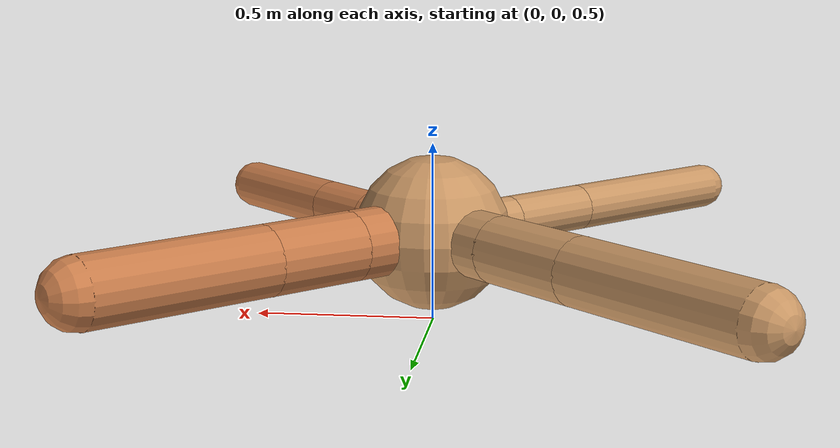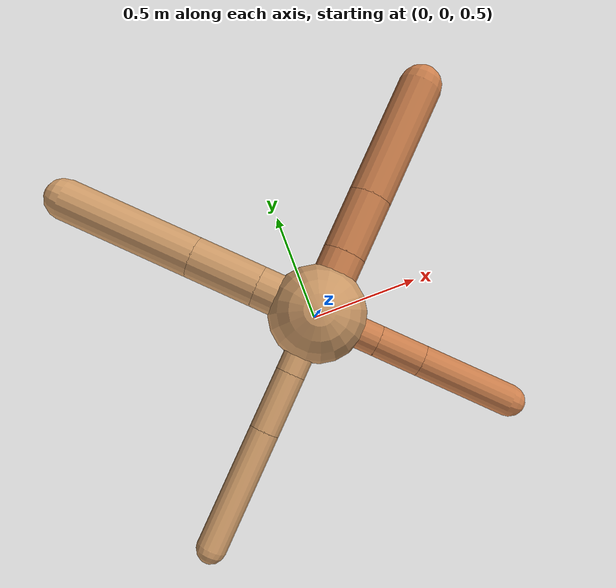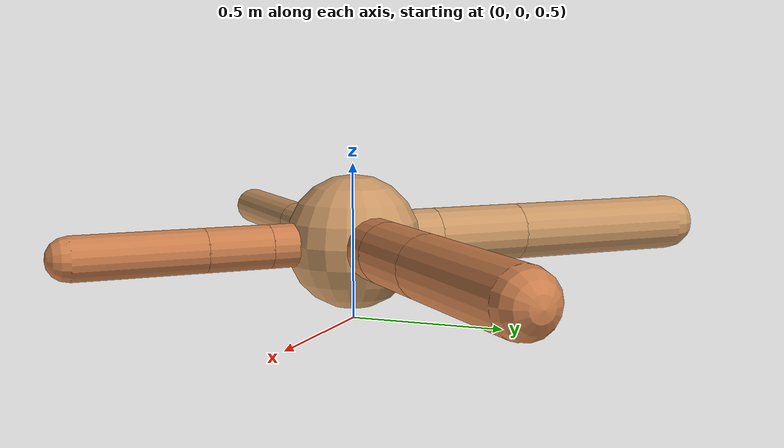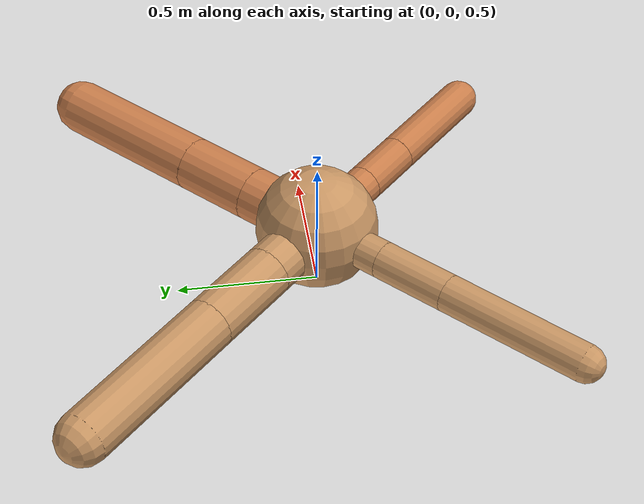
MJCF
<?xml version="1.0" ?>
<mujoco model="ant">

	<compiler angle="degree" coordinate="local" inertiafromgeom="true"/>

	<option integrator="RK4" timestep="0.01"/>

	<custom>

		<numeric data="0.0 0.0 0.55 1.0 0.0 0.0 0.0 0.0 1.0 0.0 -1.0 0.0 -1.0 0.0 1.0" name="init_qpos"/>

	</custom>

	<default>

		<joint armature="1" damping="1" limited="true"/>

		<geom conaffinity="0" condim="3" density="5.0" friction="1.5 0.1 0.1" margin="0.01" rgba="0.8 0.6 0.4 1"/>

	</default>

	<worldbody>

		<body name="torso" pos="0 0 0.75">

			<geom name="torso_geom" pos="0 0 0" size="0.21629321974363774" type="sphere"/>

			<!--joint armature="0" damping="0" limited="false" margin="0.01" name="root" pos="0 0 0" type="free"/-->

			<body name="front_left_leg" pos="0 0 0">

				<geom fromto="0 0 0 0.2 0.2 0" name="aux_1_geom" size="0.09706737113564463" type="capsule" rgba=".8 .5 .3 1"/>

				<body name="aux_1" pos="0.2 0.2 0">

					<joint axis="0 0 1" name="hip_1" pos="0.0 0.0 0.0" range="-40 40" type="hinge"/>

					<geom fromto="0 0 0 0.19382193247669477 0.19382193247669477 0" name="left_leg_geom" size="0.09706737113564463" type="capsule" rgba=".8 .5 .3 1"/>

					<body pos="0.19382193247669477 0.19382193247669477 0" name="front_left_foot">

						<joint axis="-1 1 0" name="ankle_1" pos="0.0 0.0 0.0" range="30 100" type="hinge"/>

						<geom fromto="0 0 0 0.38764386495338954 0.38764386495338954 0" name="left_ankle_geom" size="0.09706737113564463" type="capsule" rgba=".8 .5 .3 1"/>

					</body>

				</body>

			</body>

			<body name="front_right_leg" pos="0 0 0">

				<geom fromto="0 0 0 -0.2 0.2 0" name="aux_2_geom" size="0.09337511128276693" type="capsule"/>

				<body name="aux_2" pos="-0.2 0.2 0">

					<joint axis="0 0 1" name="hip_2" pos="0.0 0.0 0.0" range="-40 40" type="hinge"/>

					<geom fromto="0 0 0 -0.2176333569406571 0.2176333569406571 0" name="right_leg_geom" size="0.09337511128276693" type="capsule"/>

					<body pos="-0.2176333569406571 0.2176333569406571 0" name="front_right_foot">

						<joint axis="1 1 0" name="ankle_2" pos="0.0 0.0 0.0" range="-100 -30" type="hinge"/>

						<geom fromto="0 0 0 -0.4352667138813142 0.4352667138813142 0" name="right_ankle_geom" size="0.09337511128276693" type="capsule"/>

					</body>

				</body>

			</body>

			<body name="left_back_leg" pos="0 0 0">

				<geom fromto="0 0 0 -0.2 -0.2 0" name="aux_3_geom" size="0.06595604563417111" type="capsule"/>

				<body name="aux_3" pos="-0.2 -0.2 0">

					<joint axis="0 0 1" name="hip_3" pos="0.0 0.0 0.0" range="-40 40" type="hinge"/>

					<geom fromto="0 0 0 -0.1884650635127316 -0.1884650635127316 0" name="back_leg_geom" size="0.06595604563417111" type="capsule"/>

					<body pos="-0.1884650635127316 -0.1884650635127316 0" name="left_back_foot">

						<joint axis="-1 1 0" name="ankle_3" pos="0.0 0.0 0.0" range="-100 -30" type="hinge"/>

						<geom fromto="0 0 0 -0.3769301270254632 -0.3769301270254632 0" name="third_ankle_geom" size="0.06595604563417111" type="capsule"/>

					</body>

				</body>

			</body>

			<body name="right_back_leg" pos="0 0 0">

				<geom fromto="0 0 0 0.2 -0.2 0" name="aux_4_geom" size="0.0692076733348375" type="capsule" rgba=".8 .5 .3 1"/>

				<body name="aux_4" pos="0.2 -0.2 0">

					<joint axis="0 0 1" name="hip_4" pos="0.0 0.0 0.0" range="-40 40" type="hinge"/>

					<geom fromto="0 0 0 0.1438631734427094 -0.1438631734427094 0" name="rightback_leg_geom" size="0.0692076733348375" type="capsule" rgba=".8 .5 .3 1"/>

					<body pos="0.1438631734427094 -0.1438631734427094 0" name="right_back_foot">

						<joint axis="1 1 0" name="ankle_4" pos="0.0 0.0 0.0" range="30 100" type="hinge"/>

						<geom fromto="0 0 0 0.2877263468854188 -0.2877263468854188 0" name="fourth_ankle_geom" size="0.0692076733348375" type="capsule" rgba=".8 .5 .3 1"/>

					</body>

				</body>

			</body>

		</body>

	</worldbody>

	<actuator>

		<motor ctrllimited="true" ctrlrange="-1.0 1.0" joint="hip_4" gear="150"/>

		<motor ctrllimited="true" ctrlrange="-1.0 1.0" joint="ankle_4" gear="150"/>

		<motor ctrllimited="true" ctrlrange="-1.0 1.0" joint="hip_1" gear="150"/>

		<motor ctrllimited="true" ctrlrange="-1.0 1.0" joint="ankle_1" gear="150"/>

		<motor ctrllimited="true" ctrlrange="-1.0 1.0" joint="hip_2" gear="150"/>

		<motor ctrllimited="true" ctrlrange="-1.0 1.0" joint="ankle_2" gear="150"/>

		<motor ctrllimited="true" ctrlrange="-1.0 1.0" joint="hip_3" gear="150"/>

		<motor ctrllimited="true" ctrlrange="-1.0 1.0" joint="ankle_3" gear="150"/>

	</actuator>

</mujoco>
